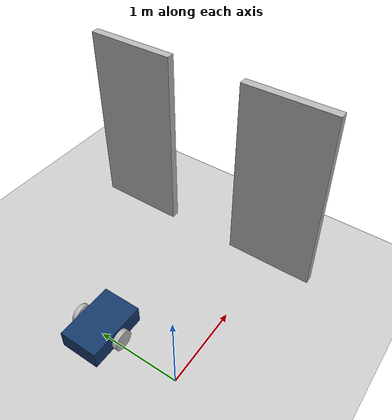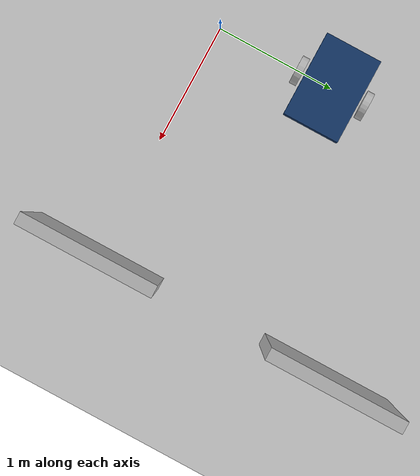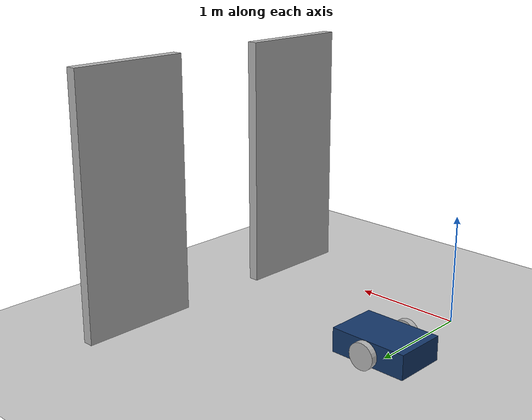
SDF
<?xml version="1.0" ?>
<sdf version="1.9">
  <world name="nexus_doorway_lab">
    <gravity>0 0 -9.8</gravity>
    <plugin filename="gz-sim-physics-system" name="gz::sim::systems::Physics"/>
    <plugin filename="gz-sim-user-commands-system" name="gz::sim::systems::UserCommands"/>
    <plugin filename="gz-sim-scene-broadcaster-system" name="gz::sim::systems::SceneBroadcaster"/>
    <light name="sun" type="directional">
      <pose>0 0 10 0 0 0</pose>
      <diffuse>0.8 0.8 0.8 1</diffuse>
      <specular>0.2 0.2 0.2 1</specular>
      <direction>-0.5 0.1 -0.9</direction>
    </light>
    <model name="ground_plane">
      <static>true</static>
      <link name="link">
        <collision name="collision"><geometry><plane><normal>0 0 1</normal><size>20 20</size></plane></geometry></collision>
        <visual name="visual"><geometry><plane><normal>0 0 1</normal><size>20 20</size></plane></geometry></visual>
      </link>
    </model>
    <model name="doorway_reference">
      <static>true</static>
      <link name="wall_left"><pose>2 0 1.2 0 0 0</pose><collision name="collision"><geometry><box><size>0.1 1.1 2.4</size></box></geometry></collision><visual name="visual"><geometry><box><size>0.1 1.1 2.4</size></box></geometry></visual></link>
      <link name="wall_right"><pose>2 2.01 1.2 0 0 0</pose><collision name="collision"><geometry><box><size>0.1 1.1 2.4</size></box></geometry></collision><visual name="visual"><geometry><box><size>0.1 1.1 2.4</size></box></geometry></visual></link>
    </model>
    <model name="nxr2">
      <pose>0 1 0.14 0 0 0</pose>
      <link name="base_link">
        <inertial><mass>14</mass><inertia><ixx>0.25</ixx><iyy>0.32</iyy><izz>0.38</izz></inertia></inertial>
        <collision name="collision"><geometry><box><size>0.72 0.48 0.22</size></box></geometry></collision>
        <visual name="visual"><geometry><box><size>0.72 0.48 0.22</size></box></geometry><material><diffuse>0.08 0.22 0.42 1</diffuse></material></visual>
      </link>
      <link name="left_wheel"><pose>0 0.29 0 1.5708 0 0</pose><inertial><mass>0.6</mass><inertia><ixx>0.002</ixx><iyy>0.002</iyy><izz>0.002</izz></inertia></inertial><collision name="collision"><geometry><cylinder><radius>0.12</radius><length>0.06</length></cylinder></geometry></collision><visual name="visual"><geometry><cylinder><radius>0.12</radius><length>0.06</length></cylinder></geometry></visual></link>
      <link name="right_wheel"><pose>0 -0.29 0 1.5708 0 0</pose><inertial><mass>0.6</mass><inertia><ixx>0.002</ixx><iyy>0.002</iyy><izz>0.002</izz></inertia></inertial><collision name="collision"><geometry><cylinder><radius>0.12</radius><length>0.06</length></cylinder></geometry></collision><visual name="visual"><geometry><cylinder><radius>0.12</radius><length>0.06</length></cylinder></geometry></visual></link>
      <joint name="left_wheel_joint" type="revolute"><parent>base_link</parent><child>left_wheel</child><axis><xyz>0 1 0</xyz><limit><lower>-1e16</lower><upper>1e16</upper></limit></axis></joint>
      <joint name="right_wheel_joint" type="revolute"><parent>base_link</parent><child>right_wheel</child><axis><xyz>0 1 0</xyz><limit><lower>-1e16</lower><upper>1e16</upper></limit></axis></joint>
      <plugin filename="gz-sim-diff-drive-system" name="gz::sim::systems::DiffDrive">
        <left_joint>left_wheel_joint</left_joint><right_joint>right_wheel_joint</right_joint>
        <wheel_separation>0.58</wheel_separation><wheel_radius>0.12</wheel_radius>
        <topic>/cmd_vel</topic>
      </plugin>
      <plugin filename="gz-sim-pose-publisher-system" name="gz::sim::systems::PosePublisher">
        <publish_link_pose>true</publish_link_pose><publish_model_pose>true</publish_model_pose>
        <use_pose_vector_msg>true</use_pose_vector_msg><static_publisher>true</static_publisher>
        <topic>/pose/info</topic>
      </plugin>
      <plugin filename="gz-sim-joint-state-publisher-system" name="gz::sim::systems::JointStatePublisher"><topic>/joint_states</topic></plugin>
    </model>
  </world>
</sdf>
